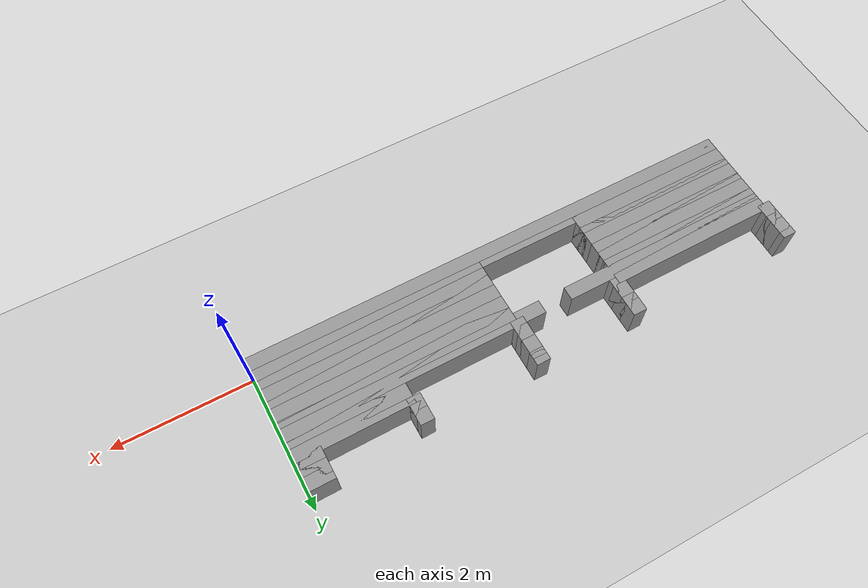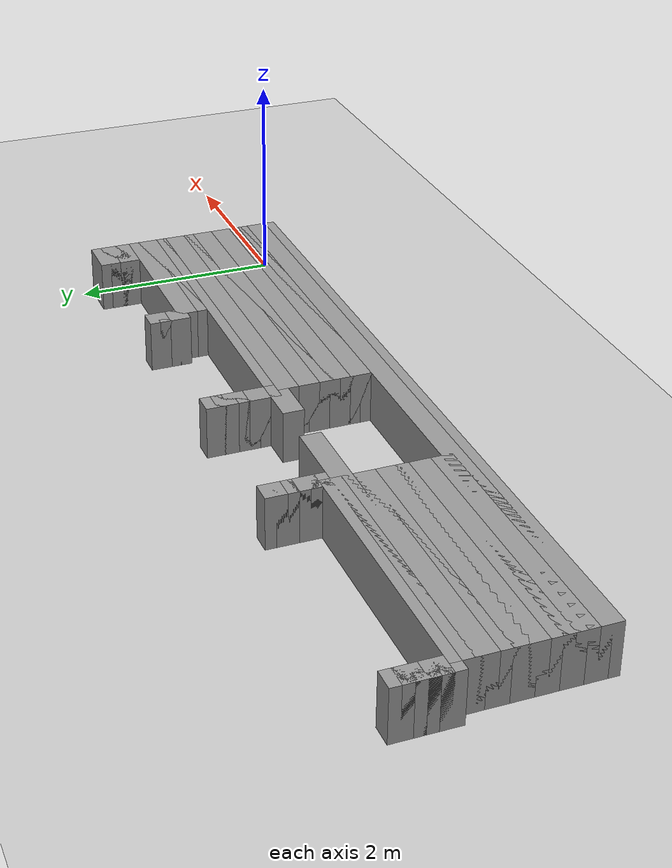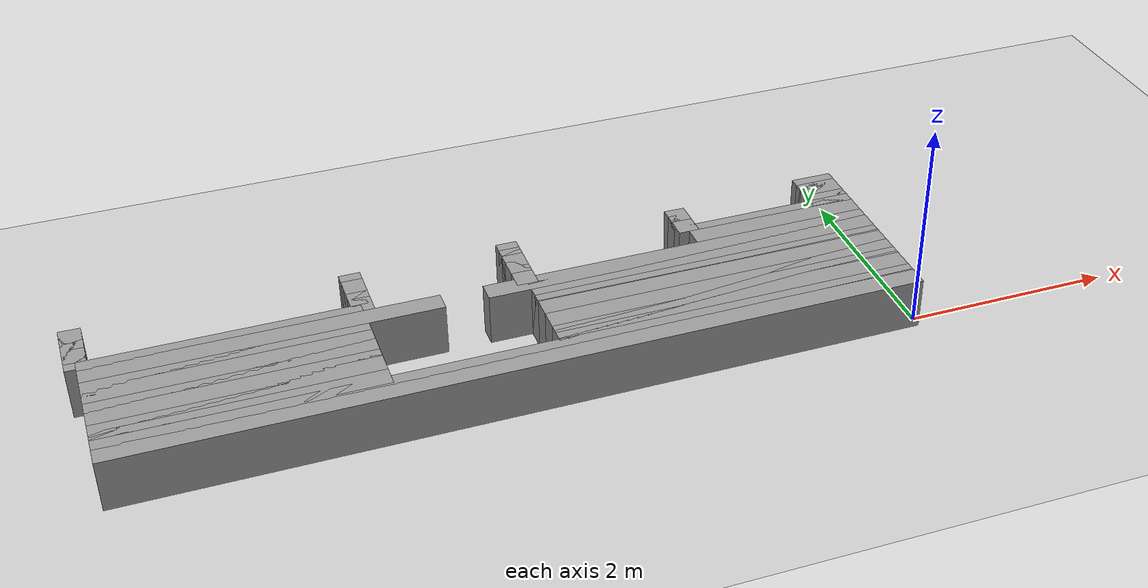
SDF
<sdf version="1.6">
 <world name="GridMap">
  <include><uri>model://sun</uri></include>
  <include><uri>model://ground_plane</uri></include>
  <model name="GridMap">
   <link name="Wall_(37.0,0.0)">
    <collision name="Wall_(37.0,0.0)_Collision">
     <geometry><box><size>7.4 0.2 0.5</size></box></geometry>
     <pose>-3.7 0.0 0.25 0 -0 0</pose>
    </collision>
    <inertial>
     <mass>0.5</mass>
     <pose>0 0.01 0 0 0 0</pose>
     <inertia><ixx>0.004</ixx><ixy>0.001</ixy><ixz>0</ixz><iyy>0.006</iyy><iyz>0</iyz><izz>0.007</izz></inertia>
    </inertial>
    <visual name="Wall_(37.0,0.0)_Visual">
     <geometry><box><size>7.4 0.2 0.5</size></box></geometry>
     <pose>-3.7 0.0 0.25 0 -0 0</pose>
     <material>
      <script><uri>file://media/materials/scripts/gazebo.material</uri><name>Gazebo/Grey</name></script>
      <ambient>1 1 1 1</ambient>
     </material>
     <meta><layer>0</layer></meta>
    </visual>
   </link>
   <link name="Wall_(37.0,1.0)">
    <collision name="Wall_(37.0,1.0)_Collision">
     <geometry><box><size>7.4 0.2 0.5</size></box></geometry>
     <pose>-3.7 0.1 0.25 0 -0 0</pose>
    </collision>
    <inertial>
     <mass>0.5</mass>
     <pose>0 0.01 0 0 0 0</pose>
     <inertia><ixx>0.004</ixx><ixy>0.001</ixy><ixz>0</ixz><iyy>0.006</iyy><iyz>0</iyz><izz>0.007</izz></inertia>
    </inertial>
    <visual name="Wall_(37.0,1.0)_Visual">
     <geometry><box><size>7.4 0.2 0.5</size></box></geometry>
     <pose>-3.7 0.1 0.25 0 -0 0</pose>
     <material>
      <script><uri>file://media/materials/scripts/gazebo.material</uri><name>Gazebo/Grey</name></script>
      <ambient>1 1 1 1</ambient>
     </material>
     <meta><layer>0</layer></meta>
    </visual>
   </link>
   <link name="Wall_(17.0,2.0)">
    <collision name="Wall_(17.0,2.0)_Collision">
     <geometry><box><size>3.4000000000000004 0.2 0.5</size></box></geometry>
     <pose>-1.7000000000000002 0.2 0.25 0 -0 0</pose>
    </collision>
    <inertial>
     <mass>0.5</mass>
     <pose>0 0.01 0 0 0 0</pose>
     <inertia><ixx>0.004</ixx><ixy>0.001</ixy><ixz>0</ixz><iyy>0.006</iyy><iyz>0</iyz><izz>0.007</izz></inertia>
    </inertial>
    <visual name="Wall_(17.0,2.0)_Visual">
     <geometry><box><size>3.4000000000000004 0.2 0.5</size></box></geometry>
     <pose>-1.7000000000000002 0.2 0.25 0 -0 0</pose>
     <material>
      <script><uri>file://media/materials/scripts/gazebo.material</uri><name>Gazebo/Grey</name></script>
      <ambient>1 1 1 1</ambient>
     </material>
     <meta><layer>0</layer></meta>
    </visual>
   </link>
   <link name="Wall_(61.5,2.0)">
    <collision name="Wall_(61.5,2.0)_Collision">
     <geometry><box><size>2.5 0.2 0.5</size></box></geometry>
     <pose>-6.15 0.2 0.25 0 -0 0</pose>
    </collision>
    <inertial>
     <mass>0.5</mass>
     <pose>0 0.01 0 0 0 0</pose>
     <inertia><ixx>0.004</ixx><ixy>0.001</ixy><ixz>0</ixz><iyy>0.006</iyy><iyz>0</iyz><izz>0.007</izz></inertia>
    </inertial>
    <visual name="Wall_(61.5,2.0)_Visual">
     <geometry><box><size>2.5 0.2 0.5</size></box></geometry>
     <pose>-6.15 0.2 0.25 0 -0 0</pose>
     <material>
      <script><uri>file://media/materials/scripts/gazebo.material</uri><name>Gazebo/Grey</name></script>
      <ambient>1 1 1 1</ambient>
     </material>
     <meta><layer>0</layer></meta>
    </visual>
   </link>
   <link name="Wall_(17.0,3.0)">
    <collision name="Wall_(17.0,3.0)_Collision">
     <geometry><box><size>3.4000000000000004 0.2 0.5</size></box></geometry>
     <pose>-1.7000000000000002 0.30000000000000004 0.25 0 -0 0</pose>
    </collision>
    <inertial>
     <mass>0.5</mass>
     <pose>0 0.01 0 0 0 0</pose>
     <inertia><ixx>0.004</ixx><ixy>0.001</ixy><ixz>0</ixz><iyy>0.006</iyy><iyz>0</iyz><izz>0.007</izz></inertia>
    </inertial>
    <visual name="Wall_(17.0,3.0)_Visual">
     <geometry><box><size>3.4000000000000004 0.2 0.5</size></box></geometry>
     <pose>-1.7000000000000002 0.30000000000000004 0.25 0 -0 0</pose>
     <material>
      <script><uri>file://media/materials/scripts/gazebo.material</uri><name>Gazebo/Grey</name></script>
      <ambient>1 1 1 1</ambient>
     </material>
     <meta><layer>0</layer></meta>
    </visual>
   </link>
   <link name="Wall_(61.5,3.0)">
    <collision name="Wall_(61.5,3.0)_Collision">
     <geometry><box><size>2.5 0.2 0.5</size></box></geometry>
     <pose>-6.15 0.30000000000000004 0.25 0 -0 0</pose>
    </collision>
    <inertial>
     <mass>0.5</mass>
     <pose>0 0.01 0 0 0 0</pose>
     <inertia><ixx>0.004</ixx><ixy>0.001</ixy><ixz>0</ixz><iyy>0.006</iyy><iyz>0</iyz><izz>0.007</izz></inertia>
    </inertial>
    <visual name="Wall_(61.5,3.0)_Visual">
     <geometry><box><size>2.5 0.2 0.5</size></box></geometry>
     <pose>-6.15 0.30000000000000004 0.25 0 -0 0</pose>
     <material>
      <script><uri>file://media/materials/scripts/gazebo.material</uri><name>Gazebo/Grey</name></script>
      <ambient>1 1 1 1</ambient>
     </material>
     <meta><layer>0</layer></meta>
    </visual>
   </link>
   <link name="Wall_(17.0,4.0)">
    <collision name="Wall_(17.0,4.0)_Collision">
     <geometry><box><size>3.4000000000000004 0.2 0.5</size></box></geometry>
     <pose>-1.7000000000000002 0.4 0.25 0 -0 0</pose>
    </collision>
    <inertial>
     <mass>0.5</mass>
     <pose>0 0.01 0 0 0 0</pose>
     <inertia><ixx>0.004</ixx><ixy>0.001</ixy><ixz>0</ixz><iyy>0.006</iyy><iyz>0</iyz><izz>0.007</izz></inertia>
    </inertial>
    <visual name="Wall_(17.0,4.0)_Visual">
     <geometry><box><size>3.4000000000000004 0.2 0.5</size></box></geometry>
     <pose>-1.7000000000000002 0.4 0.25 0 -0 0</pose>
     <material>
      <script><uri>file://media/materials/scripts/gazebo.material</uri><name>Gazebo/Grey</name></script>
      <ambient>1 1 1 1</ambient>
     </material>
     <meta><layer>0</layer></meta>
    </visual>
   </link>
   <link name="Wall_(61.5,4.0)">
    <collision name="Wall_(61.5,4.0)_Collision">
     <geometry><box><size>2.5 0.2 0.5</size></box></geometry>
     <pose>-6.15 0.4 0.25 0 -0 0</pose>
    </collision>
    <inertial>
     <mass>0.5</mass>
     <pose>0 0.01 0 0 0 0</pose>
     <inertia><ixx>0.004</ixx><ixy>0.001</ixy><ixz>0</ixz><iyy>0.006</iyy><iyz>0</iyz><izz>0.007</izz></inertia>
    </inertial>
    <visual name="Wall_(61.5,4.0)_Visual">
     <geometry><box><size>2.5 0.2 0.5</size></box></geometry>
     <pose>-6.15 0.4 0.25 0 -0 0</pose>
     <material>
      <script><uri>file://media/materials/scripts/gazebo.material</uri><name>Gazebo/Grey</name></script>
      <ambient>1 1 1 1</ambient>
     </material>
     <meta><layer>0</layer></meta>
    </visual>
   </link>
   <link name="Wall_(17.0,5.0)">
    <collision name="Wall_(17.0,5.0)_Collision">
     <geometry><box><size>3.4000000000000004 0.2 0.5</size></box></geometry>
     <pose>-1.7000000000000002 0.5 0.25 0 -0 0</pose>
    </collision>
    <inertial>
     <mass>0.5</mass>
     <pose>0 0.01 0 0 0 0</pose>
     <inertia><ixx>0.004</ixx><ixy>0.001</ixy><ixz>0</ixz><iyy>0.006</iyy><iyz>0</iyz><izz>0.007</izz></inertia>
    </inertial>
    <visual name="Wall_(17.0,5.0)_Visual">
     <geometry><box><size>3.4000000000000004 0.2 0.5</size></box></geometry>
     <pose>-1.7000000000000002 0.5 0.25 0 -0 0</pose>
     <material>
      <script><uri>file://media/materials/scripts/gazebo.material</uri><name>Gazebo/Grey</name></script>
      <ambient>1 1 1 1</ambient>
     </material>
     <meta><layer>0</layer></meta>
    </visual>
   </link>
   <link name="Wall_(61.5,5.0)">
    <collision name="Wall_(61.5,5.0)_Collision">
     <geometry><box><size>2.5 0.2 0.5</size></box></geometry>
     <pose>-6.15 0.5 0.25 0 -0 0</pose>
    </collision>
    <inertial>
     <mass>0.5</mass>
     <pose>0 0.01 0 0 0 0</pose>
     <inertia><ixx>0.004</ixx><ixy>0.001</ixy><ixz>0</ixz><iyy>0.006</iyy><iyz>0</iyz><izz>0.007</izz></inertia>
    </inertial>
    <visual name="Wall_(61.5,5.0)_Visual">
     <geometry><box><size>2.5 0.2 0.5</size></box></geometry>
     <pose>-6.15 0.5 0.25 0 -0 0</pose>
     <material>
      <script><uri>file://media/materials/scripts/gazebo.material</uri><name>Gazebo/Grey</name></script>
      <ambient>1 1 1 1</ambient>
     </material>
     <meta><layer>0</layer></meta>
    </visual>
   </link>
   <link name="Wall_(17.0,6.0)">
    <collision name="Wall_(17.0,6.0)_Collision">
     <geometry><box><size>3.4000000000000004 0.2 0.5</size></box></geometry>
     <pose>-1.7000000000000002 0.6000000000000001 0.25 0 -0 0</pose>
    </collision>
    <inertial>
     <mass>0.5</mass>
     <pose>0 0.01 0 0 0 0</pose>
     <inertia><ixx>0.004</ixx><ixy>0.001</ixy><ixz>0</ixz><iyy>0.006</iyy><iyz>0</iyz><izz>0.007</izz></inertia>
    </inertial>
    <visual name="Wall_(17.0,6.0)_Visual">
     <geometry><box><size>3.4000000000000004 0.2 0.5</size></box></geometry>
     <pose>-1.7000000000000002 0.6000000000000001 0.25 0 -0 0</pose>
     <material>
      <script><uri>file://media/materials/scripts/gazebo.material</uri><name>Gazebo/Grey</name></script>
      <ambient>1 1 1 1</ambient>
     </material>
     <meta><layer>0</layer></meta>
    </visual>
   </link>
   <link name="Wall_(61.5,6.0)">
    <collision name="Wall_(61.5,6.0)_Collision">
     <geometry><box><size>2.5 0.2 0.5</size></box></geometry>
     <pose>-6.15 0.6000000000000001 0.25 0 -0 0</pose>
    </collision>
    <inertial>
     <mass>0.5</mass>
     <pose>0 0.01 0 0 0 0</pose>
     <inertia><ixx>0.004</ixx><ixy>0.001</ixy><ixz>0</ixz><iyy>0.006</iyy><iyz>0</iyz><izz>0.007</izz></inertia>
    </inertial>
    <visual name="Wall_(61.5,6.0)_Visual">
     <geometry><box><size>2.5 0.2 0.5</size></box></geometry>
     <pose>-6.15 0.6000000000000001 0.25 0 -0 0</pose>
     <material>
      <script><uri>file://media/materials/scripts/gazebo.material</uri><name>Gazebo/Grey</name></script>
      <ambient>1 1 1 1</ambient>
     </material>
     <meta><layer>0</layer></meta>
    </visual>
   </link>
   <link name="Wall_(17.0,7.0)">
    <collision name="Wall_(17.0,7.0)_Collision">
     <geometry><box><size>3.4000000000000004 0.2 0.5</size></box></geometry>
     <pose>-1.7000000000000002 0.7000000000000001 0.25 0 -0 0</pose>
    </collision>
    <inertial>
     <mass>0.5</mass>
     <pose>0 0.01 0 0 0 0</pose>
     <inertia><ixx>0.004</ixx><ixy>0.001</ixy><ixz>0</ixz><iyy>0.006</iyy><iyz>0</iyz><izz>0.007</izz></inertia>
    </inertial>
    <visual name="Wall_(17.0,7.0)_Visual">
     <geometry><box><size>3.4000000000000004 0.2 0.5</size></box></geometry>
     <pose>-1.7000000000000002 0.7000000000000001 0.25 0 -0 0</pose>
     <material>
      <script><uri>file://media/materials/scripts/gazebo.material</uri><name>Gazebo/Grey</name></script>
      <ambient>1 1 1 1</ambient>
     </material>
     <meta><layer>0</layer></meta>
    </visual>
   </link>
   <link name="Wall_(61.5,7.0)">
    <collision name="Wall_(61.5,7.0)_Collision">
     <geometry><box><size>2.5 0.2 0.5</size></box></geometry>
     <pose>-6.15 0.7000000000000001 0.25 0 -0 0</pose>
    </collision>
    <inertial>
     <mass>0.5</mass>
     <pose>0 0.01 0 0 0 0</pose>
     <inertia><ixx>0.004</ixx><ixy>0.001</ixy><ixz>0</ixz><iyy>0.006</iyy><iyz>0</iyz><izz>0.007</izz></inertia>
    </inertial>
    <visual name="Wall_(61.5,7.0)_Visual">
     <geometry><box><size>2.5 0.2 0.5</size></box></geometry>
     <pose>-6.15 0.7000000000000001 0.25 0 -0 0</pose>
     <material>
      <script><uri>file://media/materials/scripts/gazebo.material</uri><name>Gazebo/Grey</name></script>
      <ambient>1 1 1 1</ambient>
     </material>
     <meta><layer>0</layer></meta>
    </visual>
   </link>
   <link name="Wall_(17.0,8.0)">
    <collision name="Wall_(17.0,8.0)_Collision">
     <geometry><box><size>3.4000000000000004 0.2 0.5</size></box></geometry>
     <pose>-1.7000000000000002 0.8 0.25 0 -0 0</pose>
    </collision>
    <inertial>
     <mass>0.5</mass>
     <pose>0 0.01 0 0 0 0</pose>
     <inertia><ixx>0.004</ixx><ixy>0.001</ixy><ixz>0</ixz><iyy>0.006</iyy><iyz>0</iyz><izz>0.007</izz></inertia>
    </inertial>
    <visual name="Wall_(17.0,8.0)_Visual">
     <geometry><box><size>3.4000000000000004 0.2 0.5</size></box></geometry>
     <pose>-1.7000000000000002 0.8 0.25 0 -0 0</pose>
     <material>
      <script><uri>file://media/materials/scripts/gazebo.material</uri><name>Gazebo/Grey</name></script>
      <ambient>1 1 1 1</ambient>
     </material>
     <meta><layer>0</layer></meta>
    </visual>
   </link>
   <link name="Wall_(61.5,8.0)">
    <collision name="Wall_(61.5,8.0)_Collision">
     <geometry><box><size>2.5 0.2 0.5</size></box></geometry>
     <pose>-6.15 0.8 0.25 0 -0 0</pose>
    </collision>
    <inertial>
     <mass>0.5</mass>
     <pose>0 0.01 0 0 0 0</pose>
     <inertia><ixx>0.004</ixx><ixy>0.001</ixy><ixz>0</ixz><iyy>0.006</iyy><iyz>0</iyz><izz>0.007</izz></inertia>
    </inertial>
    <visual name="Wall_(61.5,8.0)_Visual">
     <geometry><box><size>2.5 0.2 0.5</size></box></geometry>
     <pose>-6.15 0.8 0.25 0 -0 0</pose>
     <material>
      <script><uri>file://media/materials/scripts/gazebo.material</uri><name>Gazebo/Grey</name></script>
      <ambient>1 1 1 1</ambient>
     </material>
     <meta><layer>0</layer></meta>
    </visual>
   </link>
   <link name="Wall_(17.0,9.0)">
    <collision name="Wall_(17.0,9.0)_Collision">
     <geometry><box><size>3.4000000000000004 0.2 0.5</size></box></geometry>
     <pose>-1.7000000000000002 0.9 0.25 0 -0 0</pose>
    </collision>
    <inertial>
     <mass>0.5</mass>
     <pose>0 0.01 0 0 0 0</pose>
     <inertia><ixx>0.004</ixx><ixy>0.001</ixy><ixz>0</ixz><iyy>0.006</iyy><iyz>0</iyz><izz>0.007</izz></inertia>
    </inertial>
    <visual name="Wall_(17.0,9.0)_Visual">
     <geometry><box><size>3.4000000000000004 0.2 0.5</size></box></geometry>
     <pose>-1.7000000000000002 0.9 0.25 0 -0 0</pose>
     <material>
      <script><uri>file://media/materials/scripts/gazebo.material</uri><name>Gazebo/Grey</name></script>
      <ambient>1 1 1 1</ambient>
     </material>
     <meta><layer>0</layer></meta>
    </visual>
   </link>
   <link name="Wall_(61.5,9.0)">
    <collision name="Wall_(61.5,9.0)_Collision">
     <geometry><box><size>2.5 0.2 0.5</size></box></geometry>
     <pose>-6.15 0.9 0.25 0 -0 0</pose>
    </collision>
    <inertial>
     <mass>0.5</mass>
     <pose>0 0.01 0 0 0 0</pose>
     <inertia><ixx>0.004</ixx><ixy>0.001</ixy><ixz>0</ixz><iyy>0.006</iyy><iyz>0</iyz><izz>0.007</izz></inertia>
    </inertial>
    <visual name="Wall_(61.5,9.0)_Visual">
     <geometry><box><size>2.5 0.2 0.5</size></box></geometry>
     <pose>-6.15 0.9 0.25 0 -0 0</pose>
     <material>
      <script><uri>file://media/materials/scripts/gazebo.material</uri><name>Gazebo/Grey</name></script>
      <ambient>1 1 1 1</ambient>
     </material>
     <meta><layer>0</layer></meta>
    </visual>
   </link>
   <link name="Wall_(17.0,10.0)">
    <collision name="Wall_(17.0,10.0)_Collision">
     <geometry><box><size>3.4000000000000004 0.2 0.5</size></box></geometry>
     <pose>-1.7000000000000002 1.0 0.25 0 -0 0</pose>
    </collision>
    <inertial>
     <mass>0.5</mass>
     <pose>0 0.01 0 0 0 0</pose>
     <inertia><ixx>0.004</ixx><ixy>0.001</ixy><ixz>0</ixz><iyy>0.006</iyy><iyz>0</iyz><izz>0.007</izz></inertia>
    </inertial>
    <visual name="Wall_(17.0,10.0)_Visual">
     <geometry><box><size>3.4000000000000004 0.2 0.5</size></box></geometry>
     <pose>-1.7000000000000002 1.0 0.25 0 -0 0</pose>
     <material>
      <script><uri>file://media/materials/scripts/gazebo.material</uri><name>Gazebo/Grey</name></script>
      <ambient>1 1 1 1</ambient>
     </material>
     <meta><layer>0</layer></meta>
    </visual>
   </link>
   <link name="Wall_(61.5,10.0)">
    <collision name="Wall_(61.5,10.0)_Collision">
     <geometry><box><size>2.5 0.2 0.5</size></box></geometry>
     <pose>-6.15 1.0 0.25 0 -0 0</pose>
    </collision>
    <inertial>
     <mass>0.5</mass>
     <pose>0 0.01 0 0 0 0</pose>
     <inertia><ixx>0.004</ixx><ixy>0.001</ixy><ixz>0</ixz><iyy>0.006</iyy><iyz>0</iyz><izz>0.007</izz></inertia>
    </inertial>
    <visual name="Wall_(61.5,10.0)_Visual">
     <geometry><box><size>2.5 0.2 0.5</size></box></geometry>
     <pose>-6.15 1.0 0.25 0 -0 0</pose>
     <material>
      <script><uri>file://media/materials/scripts/gazebo.material</uri><name>Gazebo/Grey</name></script>
      <ambient>1 1 1 1</ambient>
     </material>
     <meta><layer>0</layer></meta>
    </visual>
   </link>
   <link name="Wall_(19.0,11.0)">
    <collision name="Wall_(19.0,11.0)_Collision">
     <geometry><box><size>3.8000000000000003 0.2 0.5</size></box></geometry>
     <pose>-1.9000000000000001 1.1 0.25 0 -0 0</pose>
    </collision>
    <inertial>
     <mass>0.5</mass>
     <pose>0 0.01 0 0 0 0</pose>
     <inertia><ixx>0.004</ixx><ixy>0.001</ixy><ixz>0</ixz><iyy>0.006</iyy><iyz>0</iyz><izz>0.007</izz></inertia>
    </inertial>
    <visual name="Wall_(19.0,11.0)_Visual">
     <geometry><box><size>3.8000000000000003 0.2 0.5</size></box></geometry>
     <pose>-1.9000000000000001 1.1 0.25 0 -0 0</pose>
     <material>
      <script><uri>file://media/materials/scripts/gazebo.material</uri><name>Gazebo/Grey</name></script>
      <ambient>1 1 1 1</ambient>
     </material>
     <meta><layer>0</layer></meta>
    </visual>
   </link>
   <link name="Wall_(58.0,11.0)">
    <collision name="Wall_(58.0,11.0)_Collision">
     <geometry><box><size>3.2 0.2 0.5</size></box></geometry>
     <pose>-5.800000000000001 1.1 0.25 0 -0 0</pose>
    </collision>
    <inertial>
     <mass>0.5</mass>
     <pose>0 0.01 0 0 0 0</pose>
     <inertia><ixx>0.004</ixx><ixy>0.001</ixy><ixz>0</ixz><iyy>0.006</iyy><iyz>0</iyz><izz>0.007</izz></inertia>
    </inertial>
    <visual name="Wall_(58.0,11.0)_Visual">
     <geometry><box><size>3.2 0.2 0.5</size></box></geometry>
     <pose>-5.800000000000001 1.1 0.25 0 -0 0</pose>
     <material>
      <script><uri>file://media/materials/scripts/gazebo.material</uri><name>Gazebo/Grey</name></script>
      <ambient>1 1 1 1</ambient>
     </material>
     <meta><layer>0</layer></meta>
    </visual>
   </link>
   <link name="Wall_(8.5,12.0)">
    <collision name="Wall_(8.5,12.0)_Collision">
     <geometry><box><size>1.7000000000000002 0.2 0.5</size></box></geometry>
     <pose>-0.8500000000000001 1.2000000000000002 0.25 0 -0 0</pose>
    </collision>
    <inertial>
     <mass>0.5</mass>
     <pose>0 0.01 0 0 0 0</pose>
     <inertia><ixx>0.004</ixx><ixy>0.001</ixy><ixz>0</ixz><iyy>0.006</iyy><iyz>0</iyz><izz>0.007</izz></inertia>
    </inertial>
    <visual name="Wall_(8.5,12.0)_Visual">
     <geometry><box><size>1.7000000000000002 0.2 0.5</size></box></geometry>
     <pose>-0.8500000000000001 1.2000000000000002 0.25 0 -0 0</pose>
     <material>
      <script><uri>file://media/materials/scripts/gazebo.material</uri><name>Gazebo/Grey</name></script>
      <ambient>1 1 1 1</ambient>
     </material>
     <meta><layer>0</layer></meta>
    </visual>
   </link>
   <link name="Wall_(34.0,12.0)">
    <collision name="Wall_(34.0,12.0)_Collision">
     <geometry><box><size>0.2 0.2 0.5</size></box></geometry>
     <pose>-3.4000000000000004 1.2000000000000002 0.25 0 -0 0</pose>
    </collision>
    <inertial>
     <mass>0.5</mass>
     <pose>0 0.01 0 0 0 0</pose>
     <inertia><ixx>0.004</ixx><ixy>0.001</ixy><ixz>0</ixz><iyy>0.006</iyy><iyz>0</iyz><izz>0.007</izz></inertia>
    </inertial>
    <visual name="Wall_(34.0,12.0)_Visual">
     <geometry><box><size>0.2 0.2 0.5</size></box></geometry>
     <pose>-3.4000000000000004 1.2000000000000002 0.25 0 -0 0</pose>
     <material>
      <script><uri>file://media/materials/scripts/gazebo.material</uri><name>Gazebo/Grey</name></script>
      <ambient>1 1 1 1</ambient>
     </material>
     <meta><layer>0</layer></meta>
    </visual>
   </link>
   <link name="Wall_(61.5,12.0)">
    <collision name="Wall_(61.5,12.0)_Collision">
     <geometry><box><size>2.5 0.2 0.5</size></box></geometry>
     <pose>-6.15 1.2000000000000002 0.25 0 -0 0</pose>
    </collision>
    <inertial>
     <mass>0.5</mass>
     <pose>0 0.01 0 0 0 0</pose>
     <inertia><ixx>0.004</ixx><ixy>0.001</ixy><ixz>0</ixz><iyy>0.006</iyy><iyz>0</iyz><izz>0.007</izz></inertia>
    </inertial>
    <visual name="Wall_(61.5,12.0)_Visual">
     <geometry><box><size>2.5 0.2 0.5</size></box></geometry>
     <pose>-6.15 1.2000000000000002 0.25 0 -0 0</pose>
     <material>
      <script><uri>file://media/materials/scripts/gazebo.material</uri><name>Gazebo/Grey</name></script>
      <ambient>1 1 1 1</ambient>
     </material>
     <meta><layer>0</layer></meta>
    </visual>
   </link>
   <link name="Wall_(8.5,13.0)">
    <collision name="Wall_(8.5,13.0)_Collision">
     <geometry><box><size>1.7000000000000002 0.2 0.5</size></box></geometry>
     <pose>-0.8500000000000001 1.3 0.25 0 -0 0</pose>
    </collision>
    <inertial>
     <mass>0.5</mass>
     <pose>0 0.01 0 0 0 0</pose>
     <inertia><ixx>0.004</ixx><ixy>0.001</ixy><ixz>0</ixz><iyy>0.006</iyy><iyz>0</iyz><izz>0.007</izz></inertia>
    </inertial>
    <visual name="Wall_(8.5,13.0)_Visual">
     <geometry><box><size>1.7000000000000002 0.2 0.5</size></box></geometry>
     <pose>-0.8500000000000001 1.3 0.25 0 -0 0</pose>
     <material>
      <script><uri>file://media/materials/scripts/gazebo.material</uri><name>Gazebo/Grey</name></script>
      <ambient>1 1 1 1</ambient>
     </material>
     <meta><layer>0</layer></meta>
    </visual>
   </link>
   <link name="Wall_(34.0,13.0)">
    <collision name="Wall_(34.0,13.0)_Collision">
     <geometry><box><size>0.2 0.2 0.5</size></box></geometry>
     <pose>-3.4000000000000004 1.3 0.25 0 -0 0</pose>
    </collision>
    <inertial>
     <mass>0.5</mass>
     <pose>0 0.01 0 0 0 0</pose>
     <inertia><ixx>0.004</ixx><ixy>0.001</ixy><ixz>0</ixz><iyy>0.006</iyy><iyz>0</iyz><izz>0.007</izz></inertia>
    </inertial>
    <visual name="Wall_(34.0,13.0)_Visual">
     <geometry><box><size>0.2 0.2 0.5</size></box></geometry>
     <pose>-3.4000000000000004 1.3 0.25 0 -0 0</pose>
     <material>
      <script><uri>file://media/materials/scripts/gazebo.material</uri><name>Gazebo/Grey</name></script>
      <ambient>1 1 1 1</ambient>
     </material>
     <meta><layer>0</layer></meta>
    </visual>
   </link>
   <link name="Wall_(49.0,13.0)">
    <collision name="Wall_(49.0,13.0)_Collision">
     <geometry><box><size>0.2 0.2 0.5</size></box></geometry>
     <pose>-4.9 1.3 0.25 0 -0 0</pose>
    </collision>
    <inertial>
     <mass>0.5</mass>
     <pose>0 0.01 0 0 0 0</pose>
     <inertia><ixx>0.004</ixx><ixy>0.001</ixy><ixz>0</ixz><iyy>0.006</iyy><iyz>0</iyz><izz>0.007</izz></inertia>
    </inertial>
    <visual name="Wall_(49.0,13.0)_Visual">
     <geometry><box><size>0.2 0.2 0.5</size></box></geometry>
     <pose>-4.9 1.3 0.25 0 -0 0</pose>
     <material>
      <script><uri>file://media/materials/scripts/gazebo.material</uri><name>Gazebo/Grey</name></script>
      <ambient>1 1 1 1</ambient>
     </material>
     <meta><layer>0</layer></meta>
    </visual>
   </link>
   <link name="Wall_(74.0,13.0)">
    <collision name="Wall_(74.0,13.0)_Collision">
     <geometry><box><size>0.2 0.2 0.5</size></box></geometry>
     <pose>-7.4 1.3 0.25 0 -0 0</pose>
    </collision>
    <inertial>
     <mass>0.5</mass>
     <pose>0 0.01 0 0 0 0</pose>
     <inertia><ixx>0.004</ixx><ixy>0.001</ixy><ixz>0</ixz><iyy>0.006</iyy><iyz>0</iyz><izz>0.007</izz></inertia>
    </inertial>
    <visual name="Wall_(74.0,13.0)_Visual">
     <geometry><box><size>0.2 0.2 0.5</size></box></geometry>
     <pose>-7.4 1.3 0.25 0 -0 0</pose>
     <material>
      <script><uri>file://media/materials/scripts/gazebo.material</uri><name>Gazebo/Grey</name></script>
      <ambient>1 1 1 1</ambient>
     </material>
     <meta><layer>0</layer></meta>
    </visual>
   </link>
   <link name="Wall_(8.5,14.0)">
    <collision name="Wall_(8.5,14.0)_Collision">
     <geometry><box><size>1.7000000000000002 0.2 0.5</size></box></geometry>
     <pose>-0.8500000000000001 1.4000000000000001 0.25 0 -0 0</pose>
    </collision>
    <inertial>
     <mass>0.5</mass>
     <pose>0 0.01 0 0 0 0</pose>
     <inertia><ixx>0.004</ixx><ixy>0.001</ixy><ixz>0</ixz><iyy>0.006</iyy><iyz>0</iyz><izz>0.007</izz></inertia>
    </inertial>
    <visual name="Wall_(8.5,14.0)_Visual">
     <geometry><box><size>1.7000000000000002 0.2 0.5</size></box></geometry>
     <pose>-0.8500000000000001 1.4000000000000001 0.25 0 -0 0</pose>
     <material>
      <script><uri>file://media/materials/scripts/gazebo.material</uri><name>Gazebo/Grey</name></script>
      <ambient>1 1 1 1</ambient>
     </material>
     <meta><layer>0</layer></meta>
    </visual>
   </link>
   <link name="Wall_(34.0,14.0)">
    <collision name="Wall_(34.0,14.0)_Collision">
     <geometry><box><size>0.2 0.2 0.5</size></box></geometry>
     <pose>-3.4000000000000004 1.4000000000000001 0.25 0 -0 0</pose>
    </collision>
    <inertial>
     <mass>0.5</mass>
     <pose>0 0.01 0 0 0 0</pose>
     <inertia><ixx>0.004</ixx><ixy>0.001</ixy><ixz>0</ixz><iyy>0.006</iyy><iyz>0</iyz><izz>0.007</izz></inertia>
    </inertial>
    <visual name="Wall_(34.0,14.0)_Visual">
     <geometry><box><size>0.2 0.2 0.5</size></box></geometry>
     <pose>-3.4000000000000004 1.4000000000000001 0.25 0 -0 0</pose>
     <material>
      <script><uri>file://media/materials/scripts/gazebo.material</uri><name>Gazebo/Grey</name></script>
      <ambient>1 1 1 1</ambient>
     </material>
     <meta><layer>0</layer></meta>
    </visual>
   </link>
   <link name="Wall_(49.0,14.0)">
    <collision name="Wall_(49.0,14.0)_Collision">
     <geometry><box><size>0.2 0.2 0.5</size></box></geometry>
     <pose>-4.9 1.4000000000000001 0.25 0 -0 0</pose>
    </collision>
    <inertial>
     <mass>0.5</mass>
     <pose>0 0.01 0 0 0 0</pose>
     <inertia><ixx>0.004</ixx><ixy>0.001</ixy><ixz>0</ixz><iyy>0.006</iyy><iyz>0</iyz><izz>0.007</izz></inertia>
    </inertial>
    <visual name="Wall_(49.0,14.0)_Visual">
     <geometry><box><size>0.2 0.2 0.5</size></box></geometry>
     <pose>-4.9 1.4000000000000001 0.25 0 -0 0</pose>
     <material>
      <script><uri>file://media/materials/scripts/gazebo.material</uri><name>Gazebo/Grey</name></script>
      <ambient>1 1 1 1</ambient>
     </material>
     <meta><layer>0</layer></meta>
    </visual>
   </link>
   <link name="Wall_(74.0,14.0)">
    <collision name="Wall_(74.0,14.0)_Collision">
     <geometry><box><size>0.2 0.2 0.5</size></box></geometry>
     <pose>-7.4 1.4000000000000001 0.25 0 -0 0</pose>
    </collision>
    <inertial>
     <mass>0.5</mass>
     <pose>0 0.01 0 0 0 0</pose>
     <inertia><ixx>0.004</ixx><ixy>0.001</ixy><ixz>0</ixz><iyy>0.006</iyy><iyz>0</iyz><izz>0.007</izz></inertia>
    </inertial>
    <visual name="Wall_(74.0,14.0)_Visual">
     <geometry><box><size>0.2 0.2 0.5</size></box></geometry>
     <pose>-7.4 1.4000000000000001 0.25 0 -0 0</pose>
     <material>
      <script><uri>file://media/materials/scripts/gazebo.material</uri><name>Gazebo/Grey</name></script>
      <ambient>1 1 1 1</ambient>
     </material>
     <meta><layer>0</layer></meta>
    </visual>
   </link>
   <link name="Wall_(2.0,15.0)">
    <collision name="Wall_(2.0,15.0)_Collision">
     <geometry><box><size>0.4 0.2 0.5</size></box></geometry>
     <pose>-0.2 1.5 0.25 0 -0 0</pose>
    </collision>
    <inertial>
     <mass>0.5</mass>
     <pose>0 0.01 0 0 0 0</pose>
     <inertia><ixx>0.004</ixx><ixy>0.001</ixy><ixz>0</ixz><iyy>0.006</iyy><iyz>0</iyz><izz>0.007</izz></inertia>
    </inertial>
    <visual name="Wall_(2.0,15.0)_Visual">
     <geometry><box><size>0.4 0.2 0.5</size></box></geometry>
     <pose>-0.2 1.5 0.25 0 -0 0</pose>
     <material>
      <script><uri>file://media/materials/scripts/gazebo.material</uri><name>Gazebo/Grey</name></script>
      <ambient>1 1 1 1</ambient>
     </material>
     <meta><layer>0</layer></meta>
    </visual>
   </link>
   <link name="Wall_(17.0,15.0)">
    <collision name="Wall_(17.0,15.0)_Collision">
     <geometry><box><size>0.2 0.2 0.5</size></box></geometry>
     <pose>-1.7000000000000002 1.5 0.25 0 -0 0</pose>
    </collision>
    <inertial>
     <mass>0.5</mass>
     <pose>0 0.01 0 0 0 0</pose>
     <inertia><ixx>0.004</ixx><ixy>0.001</ixy><ixz>0</ixz><iyy>0.006</iyy><iyz>0</iyz><izz>0.007</izz></inertia>
    </inertial>
    <visual name="Wall_(17.0,15.0)_Visual">
     <geometry><box><size>0.2 0.2 0.5</size></box></geometry>
     <pose>-1.7000000000000002 1.5 0.25 0 -0 0</pose>
     <material>
      <script><uri>file://media/materials/scripts/gazebo.material</uri><name>Gazebo/Grey</name></script>
      <ambient>1 1 1 1</ambient>
     </material>
     <meta><layer>0</layer></meta>
    </visual>
   </link>
   <link name="Wall_(34.0,15.0)">
    <collision name="Wall_(34.0,15.0)_Collision">
     <geometry><box><size>0.2 0.2 0.5</size></box></geometry>
     <pose>-3.4000000000000004 1.5 0.25 0 -0 0</pose>
    </collision>
    <inertial>
     <mass>0.5</mass>
     <pose>0 0.01 0 0 0 0</pose>
     <inertia><ixx>0.004</ixx><ixy>0.001</ixy><ixz>0</ixz><iyy>0.006</iyy><iyz>0</iyz><izz>0.007</izz></inertia>
    </inertial>
    <visual name="Wall_(34.0,15.0)_Visual">
     <geometry><box><size>0.2 0.2 0.5</size></box></geometry>
     <pose>-3.4000000000000004 1.5 0.25 0 -0 0</pose>
     <material>
      <script><uri>file://media/materials/scripts/gazebo.material</uri><name>Gazebo/Grey</name></script>
      <ambient>1 1 1 1</ambient>
     </material>
     <meta><layer>0</layer></meta>
    </visual>
   </link>
   <link name="Wall_(49.0,15.0)">
    <collision name="Wall_(49.0,15.0)_Collision">
     <geometry><box><size>0.2 0.2 0.5</size></box></geometry>
     <pose>-4.9 1.5 0.25 0 -0 0</pose>
    </collision>
    <inertial>
     <mass>0.5</mass>
     <pose>0 0.01 0 0 0 0</pose>
     <inertia><ixx>0.004</ixx><ixy>0.001</ixy><ixz>0</ixz><iyy>0.006</iyy><iyz>0</iyz><izz>0.007</izz></inertia>
    </inertial>
    <visual name="Wall_(49.0,15.0)_Visual">
     <geometry><box><size>0.2 0.2 0.5</size></box></geometry>
     <pose>-4.9 1.5 0.25 0 -0 0</pose>
     <material>
      <script><uri>file://media/materials/scripts/gazebo.material</uri><name>Gazebo/Grey</name></script>
      <ambient>1 1 1 1</ambient>
     </material>
     <meta><layer>0</layer></meta>
    </visual>
   </link>
   <link name="Wall_(74.0,15.0)">
    <collision name="Wall_(74.0,15.0)_Collision">
     <geometry><box><size>0.2 0.2 0.5</size></box></geometry>
     <pose>-7.4 1.5 0.25 0 -0 0</pose>
    </collision>
    <inertial>
     <mass>0.5</mass>
     <pose>0 0.01 0 0 0 0</pose>
     <inertia><ixx>0.004</ixx><ixy>0.001</ixy><ixz>0</ixz><iyy>0.006</iyy><iyz>0</iyz><izz>0.007</izz></inertia>
    </inertial>
    <visual name="Wall_(74.0,15.0)_Visual">
     <geometry><box><size>0.2 0.2 0.5</size></box></geometry>
     <pose>-7.4 1.5 0.25 0 -0 0</pose>
     <material>
      <script><uri>file://media/materials/scripts/gazebo.material</uri><name>Gazebo/Grey</name></script>
      <ambient>1 1 1 1</ambient>
     </material>
     <meta><layer>0</layer></meta>
    </visual>
   </link>
   <link name="Wall_(2.0,16.0)">
    <collision name="Wall_(2.0,16.0)_Collision">
     <geometry><box><size>0.4 0.2 0.5</size></box></geometry>
     <pose>-0.2 1.6 0.25 0 -0 0</pose>
    </collision>
    <inertial>
     <mass>0.5</mass>
     <pose>0 0.01 0 0 0 0</pose>
     <inertia><ixx>0.004</ixx><ixy>0.001</ixy><ixz>0</ixz><iyy>0.006</iyy><iyz>0</iyz><izz>0.007</izz></inertia>
    </inertial>
    <visual name="Wall_(2.0,16.0)_Visual">
     <geometry><box><size>0.4 0.2 0.5</size></box></geometry>
     <pose>-0.2 1.6 0.25 0 -0 0</pose>
     <material>
      <script><uri>file://media/materials/scripts/gazebo.material</uri><name>Gazebo/Grey</name></script>
      <ambient>1 1 1 1</ambient>
     </material>
     <meta><layer>0</layer></meta>
    </visual>
   </link>
   <link name="Wall_(17.0,16.0)">
    <collision name="Wall_(17.0,16.0)_Collision">
     <geometry><box><size>0.2 0.2 0.5</size></box></geometry>
     <pose>-1.7000000000000002 1.6 0.25 0 -0 0</pose>
    </collision>
    <inertial>
     <mass>0.5</mass>
     <pose>0 0.01 0 0 0 0</pose>
     <inertia><ixx>0.004</ixx><ixy>0.001</ixy><ixz>0</ixz><iyy>0.006</iyy><iyz>0</iyz><izz>0.007</izz></inertia>
    </inertial>
    <visual name="Wall_(17.0,16.0)_Visual">
     <geometry><box><size>0.2 0.2 0.5</size></box></geometry>
     <pose>-1.7000000000000002 1.6 0.25 0 -0 0</pose>
     <material>
      <script><uri>file://media/materials/scripts/gazebo.material</uri><name>Gazebo/Grey</name></script>
      <ambient>1 1 1 1</ambient>
     </material>
     <meta><layer>0</layer></meta>
    </visual>
   </link>
   <link name="Wall_(34.0,16.0)">
    <collision name="Wall_(34.0,16.0)_Collision">
     <geometry><box><size>0.2 0.2 0.5</size></box></geometry>
     <pose>-3.4000000000000004 1.6 0.25 0 -0 0</pose>
    </collision>
    <inertial>
     <mass>0.5</mass>
     <pose>0 0.01 0 0 0 0</pose>
     <inertia><ixx>0.004</ixx><ixy>0.001</ixy><ixz>0</ixz><iyy>0.006</iyy><iyz>0</iyz><izz>0.007</izz></inertia>
    </inertial>
    <visual name="Wall_(34.0,16.0)_Visual">
     <geometry><box><size>0.2 0.2 0.5</size></box></geometry>
     <pose>-3.4000000000000004 1.6 0.25 0 -0 0</pose>
     <material>
      <script><uri>file://media/materials/scripts/gazebo.material</uri><name>Gazebo/Grey</name></script>
      <ambient>1 1 1 1</ambient>
     </material>
     <meta><layer>0</layer></meta>
    </visual>
   </link>
   <link name="Wall_(49.0,16.0)">
    <collision name="Wall_(49.0,16.0)_Collision">
     <geometry><box><size>0.2 0.2 0.5</size></box></geometry>
     <pose>-4.9 1.6 0.25 0 -0 0</pose>
    </collision>
    <inertial>
     <mass>0.5</mass>
     <pose>0 0.01 0 0 0 0</pose>
     <inertia><ixx>0.004</ixx><ixy>0.001</ixy><ixz>0</ixz><iyy>0.006</iyy><iyz>0</iyz><izz>0.007</izz></inertia>
    </inertial>
    <visual name="Wall_(49.0,16.0)_Visual">
     <geometry><box><size>0.2 0.2 0.5</size></box></geometry>
     <pose>-4.9 1.6 0.25 0 -0 0</pose>
     <material>
      <script><uri>file://media/materials/scripts/gazebo.material</uri><name>Gazebo/Grey</name></script>
      <ambient>1 1 1 1</ambient>
     </material>
     <meta><layer>0</layer></meta>
    </visual>
   </link>
   <link name="Wall_(74.0,16.0)">
    <collision name="Wall_(74.0,16.0)_Collision">
     <geometry><box><size>0.2 0.2 0.5</size></box></geometry>
     <pose>-7.4 1.6 0.25 0 -0 0</pose>
    </collision>
    <inertial>
     <mass>0.5</mass>
     <pose>0 0.01 0 0 0 0</pose>
     <inertia><ixx>0.004</ixx><ixy>0.001</ixy><ixz>0</ixz><iyy>0.006</iyy><iyz>0</iyz><izz>0.007</izz></inertia>
    </inertial>
    <visual name="Wall_(74.0,16.0)_Visual">
     <geometry><box><size>0.2 0.2 0.5</size></box></geometry>
     <pose>-7.4 1.6 0.25 0 -0 0</pose>
     <material>
      <script><uri>file://media/materials/scripts/gazebo.material</uri><name>Gazebo/Grey</name></script>
      <ambient>1 1 1 1</ambient>
     </material>
     <meta><layer>0</layer></meta>
    </visual>
   </link>
   <link name="Wall_(2.0,17.0)">
    <collision name="Wall_(2.0,17.0)_Collision">
     <geometry><box><size>0.4 0.2 0.5</size></box></geometry>
     <pose>-0.2 1.7000000000000002 0.25 0 -0 0</pose>
    </collision>
    <inertial>
     <mass>0.5</mass>
     <pose>0 0.01 0 0 0 0</pose>
     <inertia><ixx>0.004</ixx><ixy>0.001</ixy><ixz>0</ixz><iyy>0.006</iyy><iyz>0</iyz><izz>0.007</izz></inertia>
    </inertial>
    <visual name="Wall_(2.0,17.0)_Visual">
     <geometry><box><size>0.4 0.2 0.5</size></box></geometry>
     <pose>-0.2 1.7000000000000002 0.25 0 -0 0</pose>
     <material>
      <script><uri>file://media/materials/scripts/gazebo.material</uri><name>Gazebo/Grey</name></script>
      <ambient>1 1 1 1</ambient>
     </material>
     <meta><layer>0</layer></meta>
    </visual>
   </link>
   <link name="Wall_(17.0,17.0)">
    <collision name="Wall_(17.0,17.0)_Collision">
     <geometry><box><size>0.2 0.2 0.5</size></box></geometry>
     <pose>-1.7000000000000002 1.7000000000000002 0.25 0 -0 0</pose>
    </collision>
    <inertial>
     <mass>0.5</mass>
     <pose>0 0.01 0 0 0 0</pose>
     <inertia><ixx>0.004</ixx><ixy>0.001</ixy><ixz>0</ixz><iyy>0.006</iyy><iyz>0</iyz><izz>0.007</izz></inertia>
    </inertial>
    <visual name="Wall_(17.0,17.0)_Visual">
     <geometry><box><size>0.2 0.2 0.5</size></box></geometry>
     <pose>-1.7000000000000002 1.7000000000000002 0.25 0 -0 0</pose>
     <material>
      <script><uri>file://media/materials/scripts/gazebo.material</uri><name>Gazebo/Grey</name></script>
      <ambient>1 1 1 1</ambient>
     </material>
     <meta><layer>0</layer></meta>
    </visual>
   </link>
   <link name="Wall_(34.0,17.0)">
    <collision name="Wall_(34.0,17.0)_Collision">
     <geometry><box><size>0.2 0.2 0.5</size></box></geometry>
     <pose>-3.4000000000000004 1.7000000000000002 0.25 0 -0 0</pose>
    </collision>
    <inertial>
     <mass>0.5</mass>
     <pose>0 0.01 0 0 0 0</pose>
     <inertia><ixx>0.004</ixx><ixy>0.001</ixy><ixz>0</ixz><iyy>0.006</iyy><iyz>0</iyz><izz>0.007</izz></inertia>
    </inertial>
    <visual name="Wall_(34.0,17.0)_Visual">
     <geometry><box><size>0.2 0.2 0.5</size></box></geometry>
     <pose>-3.4000000000000004 1.7000000000000002 0.25 0 -0 0</pose>
     <material>
      <script><uri>file://media/materials/scripts/gazebo.material</uri><name>Gazebo/Grey</name></script>
      <ambient>1 1 1 1</ambient>
     </material>
     <meta><layer>0</layer></meta>
    </visual>
   </link>
   <link name="Wall_(49.0,17.0)">
    <collision name="Wall_(49.0,17.0)_Collision">
     <geometry><box><size>0.2 0.2 0.5</size></box></geometry>
     <pose>-4.9 1.7000000000000002 0.25 0 -0 0</pose>
    </collision>
    <inertial>
     <mass>0.5</mass>
     <pose>0 0.01 0 0 0 0</pose>
     <inertia><ixx>0.004</ixx><ixy>0.001</ixy><ixz>0</ixz><iyy>0.006</iyy><iyz>0</iyz><izz>0.007</izz></inertia>
    </inertial>
    <visual name="Wall_(49.0,17.0)_Visual">
     <geometry><box><size>0.2 0.2 0.5</size></box></geometry>
     <pose>-4.9 1.7000000000000002 0.25 0 -0 0</pose>
     <material>
      <script><uri>file://media/materials/scripts/gazebo.material</uri><name>Gazebo/Grey</name></script>
      <ambient>1 1 1 1</ambient>
     </material>
     <meta><layer>0</layer></meta>
    </visual>
   </link>
   <link name="Wall_(74.0,17.0)">
    <collision name="Wall_(74.0,17.0)_Collision">
     <geometry><box><size>0.2 0.2 0.5</size></box></geometry>
     <pose>-7.4 1.7000000000000002 0.25 0 -0 0</pose>
    </collision>
    <inertial>
     <mass>0.5</mass>
     <pose>0 0.01 0 0 0 0</pose>
     <inertia><ixx>0.004</ixx><ixy>0.001</ixy><ixz>0</ixz><iyy>0.006</iyy><iyz>0</iyz><izz>0.007</izz></inertia>
    </inertial>
    <visual name="Wall_(74.0,17.0)_Visual">
     <geometry><box><size>0.2 0.2 0.5</size></box></geometry>
     <pose>-7.4 1.7000000000000002 0.25 0 -0 0</pose>
     <material>
      <script><uri>file://media/materials/scripts/gazebo.material</uri><name>Gazebo/Grey</name></script>
      <ambient>1 1 1 1</ambient>
     </material>
     <meta><layer>0</layer></meta>
    </visual>
   </link>
   <link name="Wall_(2.0,18.0)">
    <collision name="Wall_(2.0,18.0)_Collision">
     <geometry><box><size>0.4 0.2 0.5</size></box></geometry>
     <pose>-0.2 1.8 0.25 0 -0 0</pose>
    </collision>
    <inertial>
     <mass>0.5</mass>
     <pose>0 0.01 0 0 0 0</pose>
     <inertia><ixx>0.004</ixx><ixy>0.001</ixy><ixz>0</ixz><iyy>0.006</iyy><iyz>0</iyz><izz>0.007</izz></inertia>
    </inertial>
    <visual name="Wall_(2.0,18.0)_Visual">
     <geometry><box><size>0.4 0.2 0.5</size></box></geometry>
     <pose>-0.2 1.8 0.25 0 -0 0</pose>
     <material>
      <script><uri>file://media/materials/scripts/gazebo.material</uri><name>Gazebo/Grey</name></script>
      <ambient>1 1 1 1</ambient>
     </material>
     <meta><layer>0</layer></meta>
    </visual>
   </link>
   <static>1</static>
  </model>
 </world>
</sdf>
